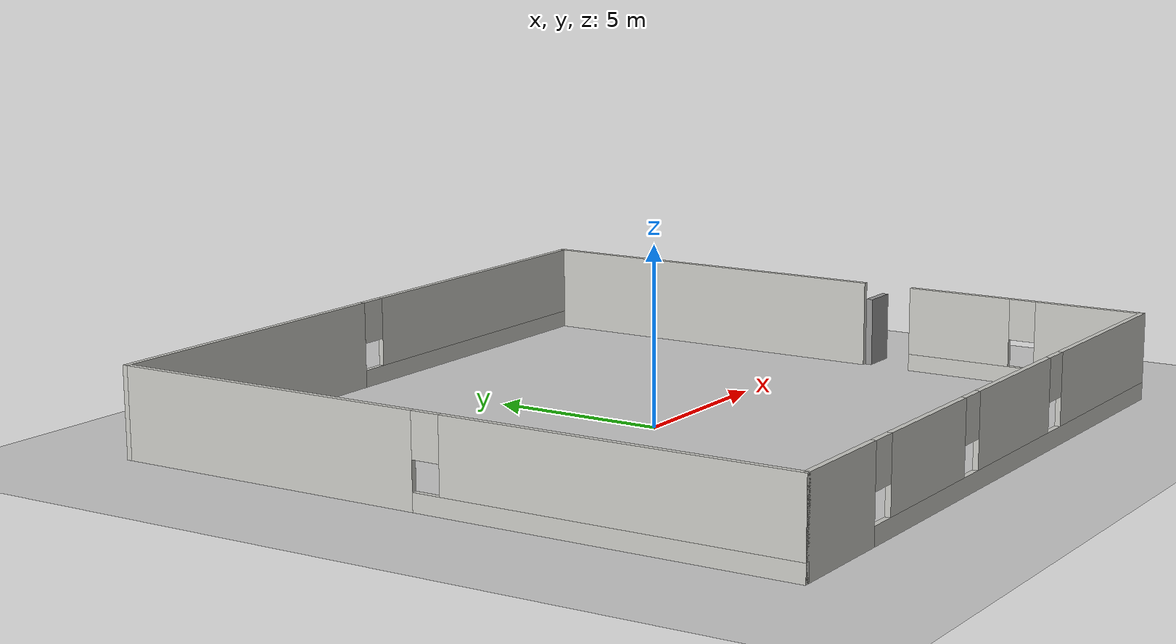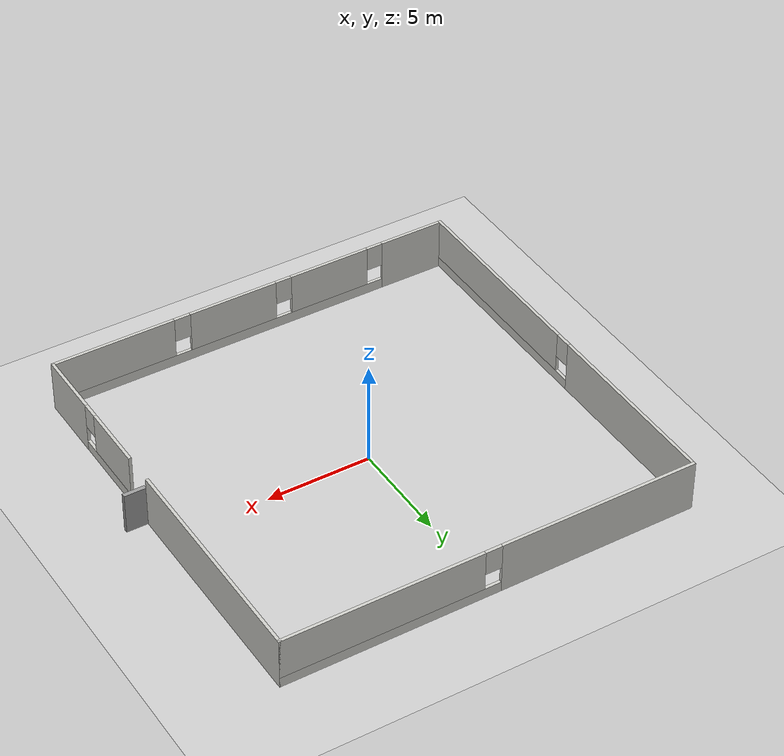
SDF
<sdf version="1.7">
 <world name="default">
  <light name="sun" type="directional">
   <pose>0 0 10 0 -0 0</pose>
   <diffuse>0.8 0.8 0.8 1</diffuse>
   <specular>0.2 0.2 0.2 1</specular>
   <attenuation>
    <range>1000</range>
    <constant>0.9</constant>
    <linear>0.01</linear>
    <quadratic>0.001</quadratic>
   </attenuation>
   <direction>-0.5 0.1 -0.9</direction>
   <spot><inner_angle>0</inner_angle><outer_angle>0</outer_angle><falloff>0</falloff></spot>
  </light>
  <model name="ground_plane">
   <static>1</static>
   <link name="link">
    <collision name="collision">
     <geometry><plane><normal>0 0 1</normal><size>100 100</size></plane></geometry>
     <surface>
      <contact><collide_bitmask>65535</collide_bitmask></contact>
      <friction><ode><mu>100</mu><mu2>50</mu2></ode></friction>
     </surface>
    </collision>
    <visual name="visual">
     <cast_shadows>0</cast_shadows>
     <geometry><plane><normal>0 0 1</normal><size>100 100</size></plane></geometry>
     <material>
      <script><uri>file://media/materials/scripts/gazebo.material</uri><name>Gazebo/Grey</name></script>
     </material>
    </visual>
   </link>
  </model>
  <gravity>0 0 -9.8</gravity>
  <magnetic_field>6e-06 2.3e-05 -4.2e-05</magnetic_field>
  <atmosphere type="adiabatic"/>
  <physics type="ode">
   <max_step_size>0.001</max_step_size>
   <real_time_factor>1</real_time_factor>
   <real_time_update_rate>1000</real_time_update_rate>
  </physics>
  <scene><ambient>0.4 0.4 0.4 1</ambient><background>0.7 0.7 0.7 1</background><shadows>1</shadows></scene>
  <spherical_coordinates>
   <surface_model>EARTH_WGS84</surface_model>
   <latitude_deg>0</latitude_deg>
   <longitude_deg>0</longitude_deg>
   <elevation>0</elevation>
   <heading_deg>0</heading_deg>
  </spherical_coordinates>
  <model name="library1">
   <pose>0.02307 -0.163955 0 0 -0 0</pose>
   <link name="Door_3">
    <collision name="Door_3_Collision">
     <geometry><box><size>1.03957 0.2 2</size></box></geometry>
     <pose>0 0 1 0 -0 0</pose>
    </collision>
    <visual name="Door_3_Visual">
     <pose>0 0 1 0 -0 0</pose>
     <geometry><box><size>1.03957 0.2 2</size></box></geometry>
     <material>
      <script><uri>file://media/materials/scripts/gazebo.material</uri><name>Gazebo/Grey</name></script>
     </material>
    </visual>
    <pose>10.4876 -1.24149 0 0 -0 0</pose>
   </link>
   <link name="Wall_10">
    <pose>-9.925 -0 0 0 -0 -1.5708</pose>
    <visual name="Wall_10_Visual_0">
     <pose>-5.2844 0 1.25 0 -0 0</pose>
     <geometry><box><size>9.1812 0.15 2.5</size></box></geometry>
     <material>
      <script><uri>file://media/materials/scripts/gazebo.material</uri><name>Gazebo/CeilingTiled</name></script>
      <ambient>1 1 1 1</ambient>
     </material>
     <meta><layer>0</layer></meta>
    </visual>
    <collision name="Wall_10_Collision_0">
     <geometry><box><size>9.1812 0.15 2.5</size></box></geometry>
     <pose>-5.2844 0 1.25 0 -0 0</pose>
    </collision>
    <visual name="Wall_10_Visual_1">
     <pose>4.5906 0 0.25 0 -0 0</pose>
     <geometry><box><size>10.5688 0.15 0.5</size></box></geometry>
     <material>
      <script><uri>file://media/materials/scripts/gazebo.material</uri><name>Gazebo/CeilingTiled</name></script>
      <ambient>1 1 1 1</ambient>
     </material>
     <meta><layer>0</layer></meta>
    </visual>
    <collision name="Wall_10_Collision_1">
     <geometry><box><size>10.5688 0.15 0.5</size></box></geometry>
     <pose>4.5906 0 0.25 0 -0 0</pose>
    </collision>
    <visual name="Wall_10_Visual_2">
     <pose>4.9906 0 1.5 0 -0 0</pose>
     <geometry><box><size>9.7688 0.15 2</size></box></geometry>
     <material>
      <script><uri>file://media/materials/scripts/gazebo.material</uri><name>Gazebo/CeilingTiled</name></script>
      <ambient>1 1 1 1</ambient>
     </material>
     <meta><layer>0</layer></meta>
    </visual>
    <collision name="Wall_10_Collision_2">
     <geometry><box><size>9.7688 0.15 2</size></box></geometry>
     <pose>4.9906 0 1.5 0 -0 0</pose>
    </collision>
    <visual name="Wall_10_Visual_3">
     <pose>-0.293801 0 1.9 0 -0 0</pose>
     <geometry><box><size>0.8 0.15 1.2</size></box></geometry>
     <material>
      <script><uri>file://media/materials/scripts/gazebo.material</uri><name>Gazebo/CeilingTiled</name></script>
      <ambient>1 1 1 1</ambient>
     </material>
     <meta><layer>0</layer></meta>
    </visual>
    <collision name="Wall_10_Collision_3">
     <geometry><box><size>0.8 0.15 1.2</size></box></geometry>
     <pose>-0.293801 0 1.9 0 -0 0</pose>
    </collision>
   </link>
   <link name="Wall_18">
    <collision name="Wall_18_Collision">
     <geometry><box><size>11 0.15 2.5</size></box></geometry>
     <pose>0 0 1.25 0 -0 0</pose>
    </collision>
    <visual name="Wall_18_Visual">
     <pose>0 0 1.25 0 -0 0</pose>
     <geometry><box><size>11 0.15 2.5</size></box></geometry>
     <material>
      <script><uri>file://media/materials/scripts/gazebo.material</uri><name>Gazebo/CeilingTiled</name></script>
      <ambient>1 1 1 1</ambient>
     </material>
     <meta><layer>0</layer></meta>
    </visual>
    <pose>9.925 4.375 0 0 -0 -1.5708</pose>
   </link>
   <link name="Wall_2">
    <pose>0 -9.8 0 0 -0 0</pose>
    <visual name="Wall_2_Visual_0">
     <pose>-8.37705 0 1.25 0 -0 0</pose>
     <geometry><box><size>3.2459 0.15 2.5</size></box></geometry>
     <material>
      <script><uri>file://media/materials/scripts/gazebo.material</uri><name>Gazebo/CeilingTiled</name></script>
      <ambient>1 1 1 1</ambient>
     </material>
     <meta><layer>0</layer></meta>
    </visual>
    <collision name="Wall_2_Collision_0">
     <geometry><box><size>3.2459 0.15 2.5</size></box></geometry>
     <pose>-8.37705 0 1.25 0 -0 0</pose>
    </collision>
    <visual name="Wall_2_Visual_1">
     <pose>1.62295 0 0.25 0 -0 0</pose>
     <geometry><box><size>16.7541 0.15 0.5</size></box></geometry>
     <material>
      <script><uri>file://media/materials/scripts/gazebo.material</uri><name>Gazebo/CeilingTiled</name></script>
      <ambient>1 1 1 1</ambient>
     </material>
     <meta><layer>0</layer></meta>
    </visual>
    <collision name="Wall_2_Collision_1">
     <geometry><box><size>16.7541 0.15 0.5</size></box></geometry>
     <pose>1.62295 0 0.25 0 -0 0</pose>
    </collision>
    <visual name="Wall_2_Visual_2">
     <pose>-3.95811 0 1.5 0 -0 0</pose>
     <geometry><box><size>3.99196 0.15 2</size></box></geometry>
     <material>
      <script><uri>file://media/materials/scripts/gazebo.material</uri><name>Gazebo/CeilingTiled</name></script>
      <ambient>1 1 1 1</ambient>
     </material>
     <meta><layer>0</layer></meta>
    </visual>
    <collision name="Wall_2_Collision_2">
     <geometry><box><size>3.99196 0.15 2</size></box></geometry>
     <pose>-3.95811 0 1.5 0 -0 0</pose>
    </collision>
    <visual name="Wall_2_Visual_3">
     <pose>1.01995 0 1.5 0 -0 0</pose>
     <geometry><box><size>4.36416 0.15 2</size></box></geometry>
     <material>
      <script><uri>file://media/materials/scripts/gazebo.material</uri><name>Gazebo/CeilingTiled</name></script>
      <ambient>1 1 1 1</ambient>
     </material>
     <meta><layer>0</layer></meta>
    </visual>
    <collision name="Wall_2_Collision_3">
     <geometry><box><size>4.36416 0.15 2</size></box></geometry>
     <pose>1.01995 0 1.5 0 -0 0</pose>
    </collision>
    <visual name="Wall_2_Visual_4">
     <pose>7.00101 0 1.5 0 -0 0</pose>
     <geometry><box><size>5.99798 0.15 2</size></box></geometry>
     <material>
      <script><uri>file://media/materials/scripts/gazebo.material</uri><name>Gazebo/CeilingTiled</name></script>
      <ambient>1 1 1 1</ambient>
     </material>
     <meta><layer>0</layer></meta>
    </visual>
    <collision name="Wall_2_Collision_4">
     <geometry><box><size>5.99798 0.15 2</size></box></geometry>
     <pose>7.00101 0 1.5 0 -0 0</pose>
    </collision>
    <visual name="Wall_2_Visual_5">
     <pose>-6.3541 0 1.9 0 -0 0</pose>
     <geometry><box><size>0.8 0.15 1.2</size></box></geometry>
     <material>
      <script><uri>file://media/materials/scripts/gazebo.material</uri><name>Gazebo/CeilingTiled</name></script>
      <ambient>1 1 1 1</ambient>
     </material>
     <meta><layer>0</layer></meta>
    </visual>
    <collision name="Wall_2_Collision_5">
     <geometry><box><size>0.8 0.15 1.2</size></box></geometry>
     <pose>-6.3541 0 1.9 0 -0 0</pose>
    </collision>
    <visual name="Wall_2_Visual_6">
     <pose>-1.56213 0 1.9 0 -0 0</pose>
     <geometry><box><size>0.8 0.15 1.2</size></box></geometry>
     <material>
      <script><uri>file://media/materials/scripts/gazebo.material</uri><name>Gazebo/CeilingTiled</name></script>
      <ambient>1 1 1 1</ambient>
     </material>
     <meta><layer>0</layer></meta>
    </visual>
    <collision name="Wall_2_Collision_6">
     <geometry><box><size>0.8 0.15 1.2</size></box></geometry>
     <pose>-1.56213 0 1.9 0 -0 0</pose>
    </collision>
    <visual name="Wall_2_Visual_7">
     <pose>3.60202 0 1.9 0 -0 0</pose>
     <geometry><box><size>0.8 0.15 1.2</size></box></geometry>
     <material>
      <script><uri>file://media/materials/scripts/gazebo.material</uri><name>Gazebo/CeilingTiled</name></script>
      <ambient>1 1 1 1</ambient>
     </material>
     <meta><layer>0</layer></meta>
    </visual>
    <collision name="Wall_2_Collision_7">
     <geometry><box><size>0.8 0.15 1.2</size></box></geometry>
     <pose>3.60202 0 1.9 0 -0 0</pose>
    </collision>
   </link>
   <link name="Wall_21">
    <pose>9.925 -6.25 0 0 -0 1.5708</pose>
    <visual name="Wall_21_Visual_0">
     <pose>-1.99727 0 1.25 0 -0 0</pose>
     <geometry><box><size>3.25545 0.15 2.5</size></box></geometry>
     <material>
      <script><uri>file://media/materials/scripts/gazebo.material</uri><name>Gazebo/CeilingTiled</name></script>
      <ambient>1 1 1 1</ambient>
     </material>
     <meta><layer>0</layer></meta>
    </visual>
    <collision name="Wall_21_Collision_0">
     <geometry><box><size>3.25545 0.15 2.5</size></box></geometry>
     <pose>-1.99727 0 1.25 0 -0 0</pose>
    </collision>
    <visual name="Wall_21_Visual_1">
     <pose>1.62773 0 0.25 0 -0 0</pose>
     <geometry><box><size>3.99455 0.15 0.5</size></box></geometry>
     <material>
      <script><uri>file://media/materials/scripts/gazebo.material</uri><name>Gazebo/CeilingTiled</name></script>
      <ambient>1 1 1 1</ambient>
     </material>
     <meta><layer>0</layer></meta>
    </visual>
    <collision name="Wall_21_Collision_1">
     <geometry><box><size>3.99455 0.15 0.5</size></box></geometry>
     <pose>1.62773 0 0.25 0 -0 0</pose>
    </collision>
    <visual name="Wall_21_Visual_2">
     <pose>2.02773 0 1.5 0 -0 0</pose>
     <geometry><box><size>3.19455 0.15 2</size></box></geometry>
     <material>
      <script><uri>file://media/materials/scripts/gazebo.material</uri><name>Gazebo/CeilingTiled</name></script>
      <ambient>1 1 1 1</ambient>
     </material>
     <meta><layer>0</layer></meta>
    </visual>
    <collision name="Wall_21_Collision_2">
     <geometry><box><size>3.19455 0.15 2</size></box></geometry>
     <pose>2.02773 0 1.5 0 -0 0</pose>
    </collision>
    <visual name="Wall_21_Visual_3">
     <pose>0.030453 0 1.9 0 -0 0</pose>
     <geometry><box><size>0.8 0.15 1.2</size></box></geometry>
     <material>
      <script><uri>file://media/materials/scripts/gazebo.material</uri><name>Gazebo/CeilingTiled</name></script>
      <ambient>1 1 1 1</ambient>
     </material>
     <meta><layer>0</layer></meta>
    </visual>
    <collision name="Wall_21_Collision_3">
     <geometry><box><size>0.8 0.15 1.2</size></box></geometry>
     <pose>0.030453 0 1.9 0 -0 0</pose>
    </collision>
   </link>
   <link name="Wall_5">
    <pose>0 9.8 0 0 -0 0</pose>
    <visual name="Wall_5_Visual_0">
     <pose>-5.1992 0 1.25 0 -0 0</pose>
     <geometry><box><size>9.6016 0.15 2.5</size></box></geometry>
     <material>
      <script><uri>file://media/materials/scripts/gazebo.material</uri><name>Gazebo/CeilingTiled</name></script>
      <ambient>1 1 1 1</ambient>
     </material>
     <meta><layer>0</layer></meta>
    </visual>
    <collision name="Wall_5_Collision_0">
     <geometry><box><size>9.6016 0.15 2.5</size></box></geometry>
     <pose>-5.1992 0 1.25 0 -0 0</pose>
    </collision>
    <visual name="Wall_5_Visual_1">
     <pose>4.8008 0 0.25 0 -0 0</pose>
     <geometry><box><size>10.3984 0.15 0.5</size></box></geometry>
     <material>
      <script><uri>file://media/materials/scripts/gazebo.material</uri><name>Gazebo/CeilingTiled</name></script>
      <ambient>1 1 1 1</ambient>
     </material>
     <meta><layer>0</layer></meta>
    </visual>
    <collision name="Wall_5_Collision_1">
     <geometry><box><size>10.3984 0.15 0.5</size></box></geometry>
     <pose>4.8008 0 0.25 0 -0 0</pose>
    </collision>
    <visual name="Wall_5_Visual_2">
     <pose>5.2008 0 1.5 0 -0 0</pose>
     <geometry><box><size>9.5984 0.15 2</size></box></geometry>
     <material>
      <script><uri>file://media/materials/scripts/gazebo.material</uri><name>Gazebo/CeilingTiled</name></script>
      <ambient>1 1 1 1</ambient>
     </material>
     <meta><layer>0</layer></meta>
    </visual>
    <collision name="Wall_5_Collision_2">
     <geometry><box><size>9.5984 0.15 2</size></box></geometry>
     <pose>5.2008 0 1.5 0 -0 0</pose>
    </collision>
    <visual name="Wall_5_Visual_3">
     <pose>0.001604 0 1.9 0 -0 0</pose>
     <geometry><box><size>0.8 0.15 1.2</size></box></geometry>
     <material>
      <script><uri>file://media/materials/scripts/gazebo.material</uri><name>Gazebo/CeilingTiled</name></script>
      <ambient>1 1 1 1</ambient>
     </material>
     <meta><layer>0</layer></meta>
    </visual>
    <collision name="Wall_5_Collision_3">
     <geometry><box><size>0.8 0.15 1.2</size></box></geometry>
     <pose>0.001604 0 1.9 0 -0 0</pose>
    </collision>
   </link>
   <static>1</static>
  </model>
 </world>
</sdf>
